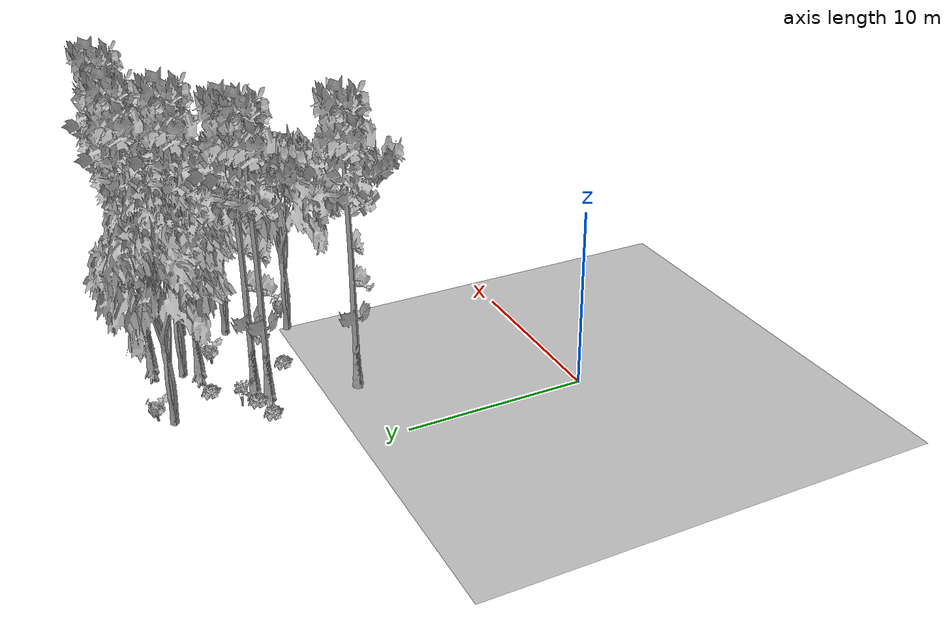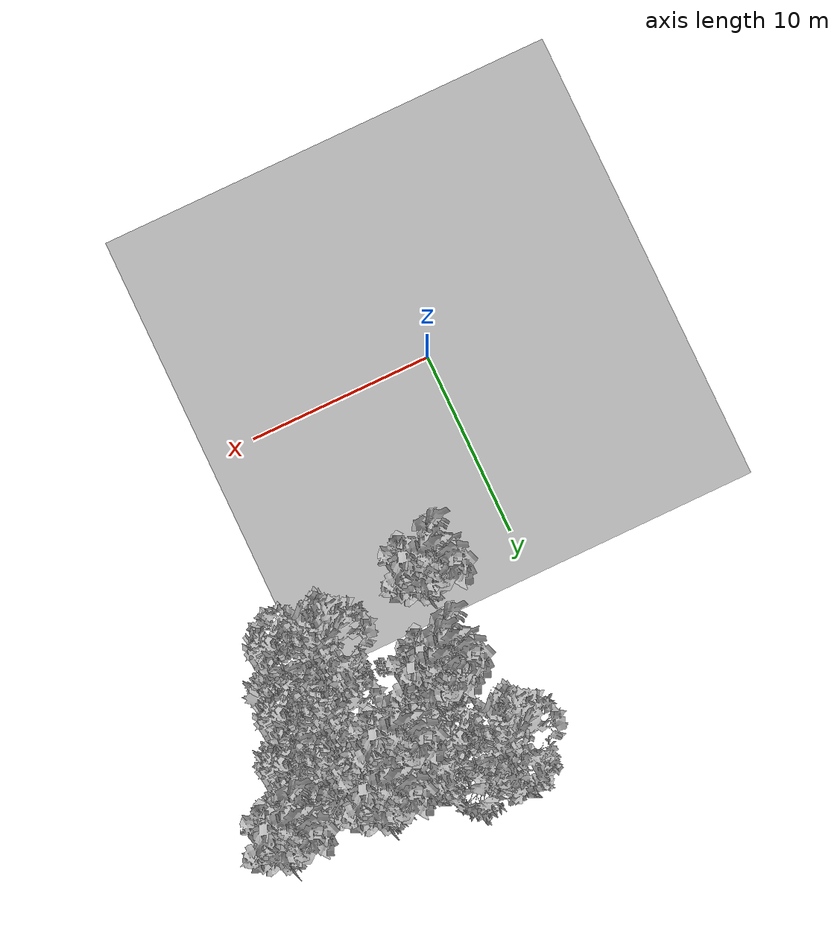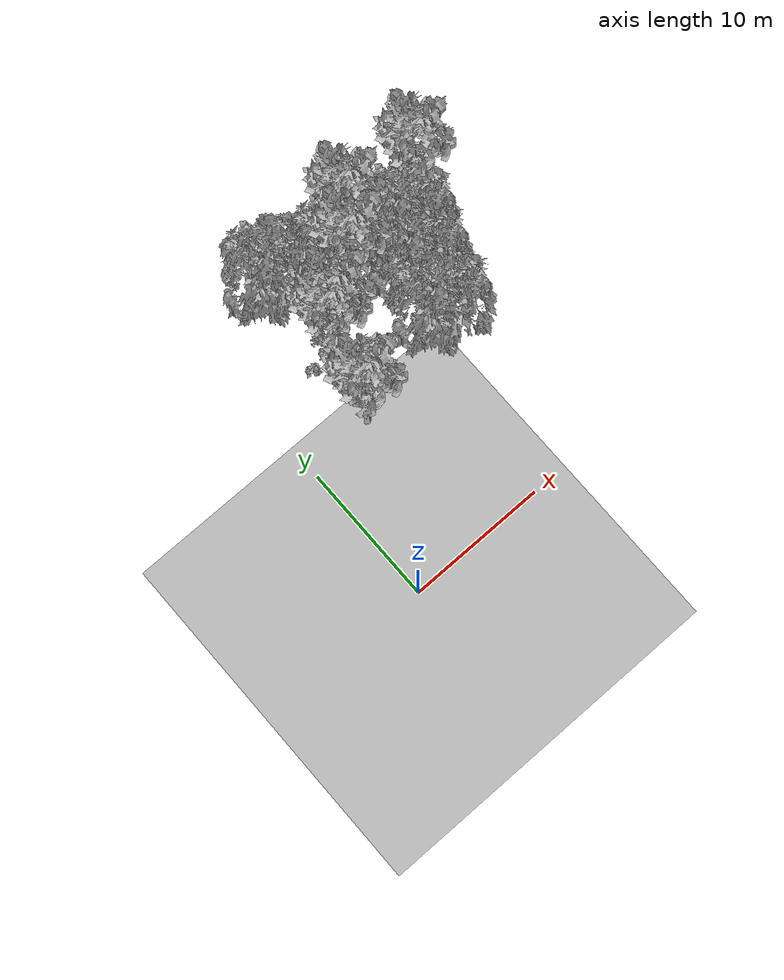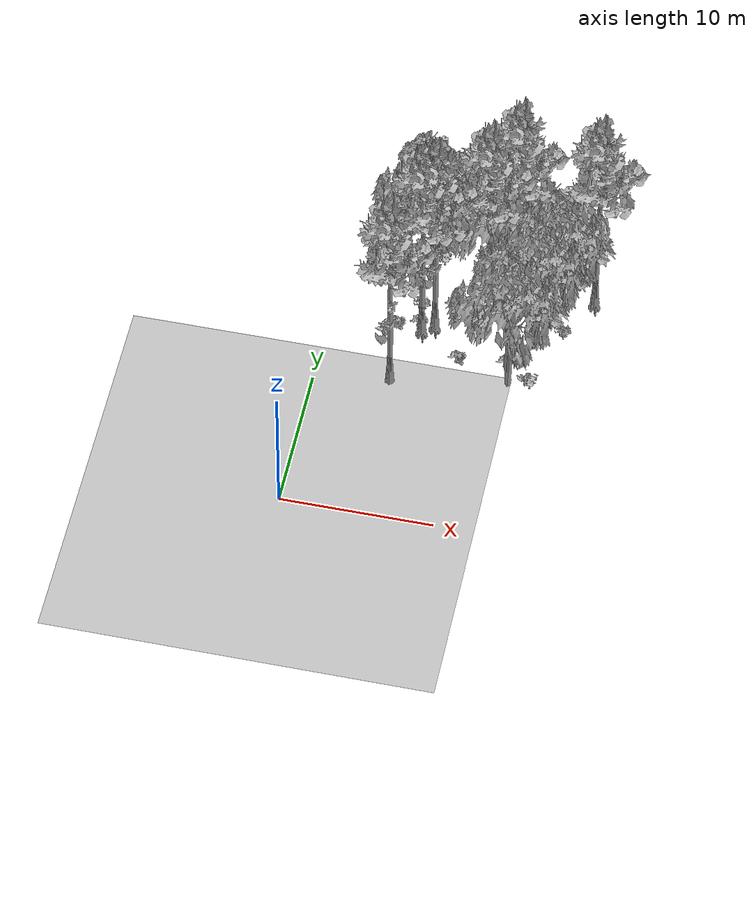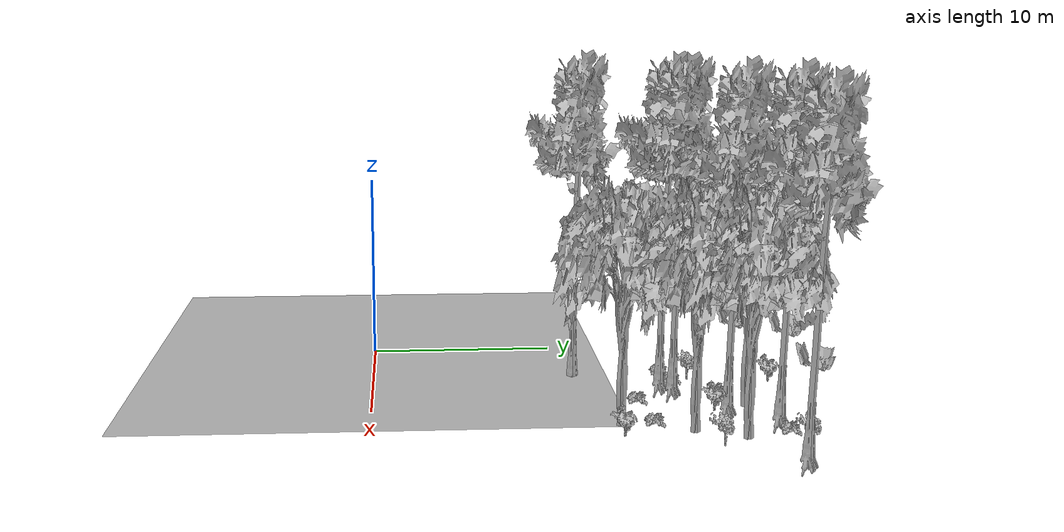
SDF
<sdf version="1.7">
 <world name="default">
  <model name="ground_plane">
   <static>1</static>
   <link name="link">
    <collision name="collision">
     <pose>-50 0 0 0 -0 0</pose>
     <geometry><plane><normal>0 0 1</normal><size>80 80</size></plane></geometry>
     <surface><contact><ode><min_depth>0.01</min_depth><max_vel>0</max_vel></ode></contact></surface>
    </collision>
    <visual name="grass">
     <cast_shadows>0</cast_shadows>
     <geometry>
      <mesh>
       <scale>0.46714285714285714 0.46714285714285714 0.1</scale>
       <uri>file://grass_plane/meshes/grass_plane.dae</uri>
      </mesh>
     </geometry>
    </visual>
   </link>
  </model>
  <model name="Tree 24">
   <static>1</static>
   <pose>13.38012592410449 15.485081361234052 0 1.57079 -0 0</pose>
   <link name="link">
    <collision name="collision">
     <geometry><mesh><scale>3.5 5 3.5</scale><uri>model://tree_2/meshes/tree_2.obj</uri></mesh></geometry>
    </collision>
    <visual name="visual">
     <geometry><mesh><scale>3.5 5 3.5</scale><uri>model://tree_2/meshes/tree_2.obj</uri></mesh></geometry>
    </visual>
   </link>
  </model>
  <model name="Tree 65">
   <static>1</static>
   <pose>4.92162815765316 10.764913708239128 0 1.57079 -0 0</pose>
   <link name="link">
    <collision name="collision">
     <geometry><mesh><scale>3.5 5 3.5</scale><uri>model://tree_9/meshes/tree_9.obj</uri></mesh></geometry>
    </collision>
    <visual name="visual">
     <geometry><mesh><scale>3.5 5 3.5</scale><uri>model://tree_9/meshes/tree_9.obj</uri></mesh></geometry>
    </visual>
   </link>
  </model>
  <model name="Tree 185">
   <static>1</static>
   <pose>5.742342974056676 20.387833841905838 0 1.57079 -0 0</pose>
   <link name="link">
    <collision name="collision">
     <geometry><mesh><scale>3.5 5 3.5</scale><uri>model://tree_2/meshes/tree_2.obj</uri></mesh></geometry>
    </collision>
    <visual name="visual">
     <geometry><mesh><scale>3.5 5 3.5</scale><uri>model://tree_2/meshes/tree_2.obj</uri></mesh></geometry>
    </visual>
   </link>
  </model>
  <model name="Tree 186">
   <static>1</static>
   <pose>14.333351921489097 17.78431121162364 0 1.57079 -0 0</pose>
   <link name="link">
    <collision name="collision">
     <geometry><mesh><scale>3.5 5 3.5</scale><uri>model://tree_2/meshes/tree_2.obj</uri></mesh></geometry>
    </collision>
    <visual name="visual">
     <geometry><mesh><scale>3.5 5 3.5</scale><uri>model://tree_2/meshes/tree_2.obj</uri></mesh></geometry>
    </visual>
   </link>
  </model>
  <model name="Tree 204">
   <static>1</static>
   <pose>12.358172221784272 12.118609055920373 0 1.57079 -0 0</pose>
   <link name="link">
    <collision name="collision">
     <geometry><mesh><scale>3.5 5 3.5</scale><uri>model://tree_2/meshes/tree_2.obj</uri></mesh></geometry>
    </collision>
    <visual name="visual">
     <geometry><mesh><scale>3.5 5 3.5</scale><uri>model://tree_2/meshes/tree_2.obj</uri></mesh></geometry>
    </visual>
   </link>
  </model>
  <model name="Tree 228">
   <static>1</static>
   <pose>16.742866368574553 19.899487163918863 0 1.57079 -0 0</pose>
   <link name="link">
    <collision name="collision">
     <geometry><mesh><scale>3.5 5 3.5</scale><uri>model://tree_9/meshes/tree_9.obj</uri></mesh></geometry>
    </collision>
    <visual name="visual">
     <geometry><mesh><scale>3.5 5 3.5</scale><uri>model://tree_9/meshes/tree_9.obj</uri></mesh></geometry>
    </visual>
   </link>
  </model>
  <model name="Tree 314">
   <static>1</static>
   <pose>6.105237785881123 15.303037741854467 0 1.57079 -0 0</pose>
   <link name="link">
    <collision name="collision">
     <geometry><mesh><scale>3.5 5 3.5</scale><uri>model://tree_9/meshes/tree_9.obj</uri></mesh></geometry>
    </collision>
    <visual name="visual">
     <geometry><mesh><scale>3.5 5 3.5</scale><uri>model://tree_9/meshes/tree_9.obj</uri></mesh></geometry>
    </visual>
   </link>
  </model>
  <model name="Tree 343">
   <static>1</static>
   <pose>10.003418617094688 18.84062264739608 0 1.57079 -0 0</pose>
   <link name="link">
    <collision name="collision">
     <geometry><mesh><scale>3.5 5 3.5</scale><uri>model://tree_2/meshes/tree_2.obj</uri></mesh></geometry>
    </collision>
    <visual name="visual">
     <geometry><mesh><scale>3.5 5 3.5</scale><uri>model://tree_2/meshes/tree_2.obj</uri></mesh></geometry>
    </visual>
   </link>
  </model>
  <model name="Tree 360">
   <static>1</static>
   <pose>11.528405096089053 20.20735470074851 0 1.57079 -0 0</pose>
   <link name="link">
    <collision name="collision">
     <geometry><mesh><scale>3.5 5 3.5</scale><uri>model://tree_9/meshes/tree_9.obj</uri></mesh></geometry>
    </collision>
    <visual name="visual">
     <geometry><mesh><scale>3.5 5 3.5</scale><uri>model://tree_9/meshes/tree_9.obj</uri></mesh></geometry>
    </visual>
   </link>
  </model>
  <model name="Tree 378">
   <static>1</static>
   <pose>6.867868641577239 15.845526687433392 0 1.57079 -0 0</pose>
   <link name="link">
    <collision name="collision">
     <geometry><mesh><scale>3.5 5 3.5</scale><uri>model://tree_9/meshes/tree_9.obj</uri></mesh></geometry>
    </collision>
    <visual name="visual">
     <geometry><mesh><scale>3.5 5 3.5</scale><uri>model://tree_9/meshes/tree_9.obj</uri></mesh></geometry>
    </visual>
   </link>
  </model>
  <model name="Tree 401">
   <static>1</static>
   <pose>9.95048836911485 17.99742113597855 0 1.57079 -0 0</pose>
   <link name="link">
    <collision name="collision">
     <geometry><mesh><scale>3.5 5 3.5</scale><uri>model://tree_9/meshes/tree_9.obj</uri></mesh></geometry>
    </collision>
    <visual name="visual">
     <geometry><mesh><scale>3.5 5 3.5</scale><uri>model://tree_9/meshes/tree_9.obj</uri></mesh></geometry>
    </visual>
   </link>
  </model>
  <model name="Bush 56">
   <static>1</static>
   <pose>13.394731145654127 20.12972115872862 0 1.57079 -0 0</pose>
   <link name="link">
    <collision name="collision">
     <geometry><mesh><scale>2 2 2</scale><uri>model://bush_2/meshes/bush_2.obj</uri></mesh></geometry>
     <surface><contact><collide_without_contact>false</collide_without_contact></contact></surface>
    </collision>
    <visual name="visual">
     <geometry><mesh><scale>2 2 2</scale><uri>model://bush_2/meshes/bush_2.obj</uri></mesh></geometry>
    </visual>
   </link>
  </model>
  <model name="Bush 171">
   <static>1</static>
   <pose>4.387192458253416 15.613715315374705 0 1.57079 -0 0</pose>
   <link name="link">
    <collision name="collision">
     <geometry><mesh><scale>2 2 2</scale><uri>model://bush_2/meshes/bush_2.obj</uri></mesh></geometry>
     <surface><contact><collide_without_contact>false</collide_without_contact></contact></surface>
    </collision>
    <visual name="visual">
     <geometry><mesh><scale>2 2 2</scale><uri>model://bush_2/meshes/bush_2.obj</uri></mesh></geometry>
    </visual>
   </link>
  </model>
  <model name="Bush 293">
   <static>1</static>
   <pose>5.880793698900689 16.8571688920362 0 1.57079 -0 0</pose>
   <link name="link">
    <collision name="collision">
     <geometry><mesh><scale>2 2 2</scale><uri>model://bush_5/meshes/bush_5.obj</uri></mesh></geometry>
     <surface><contact><collide_without_contact>false</collide_without_contact></contact></surface>
    </collision>
    <visual name="visual">
     <geometry><mesh><scale>2 2 2</scale><uri>model://bush_5/meshes/bush_5.obj</uri></mesh></geometry>
    </visual>
   </link>
  </model>
  <model name="Bush 377">
   <static>1</static>
   <pose>6.462817045984998 21.11668833014192 0 1.57079 -0 0</pose>
   <link name="link">
    <collision name="collision">
     <geometry><mesh><scale>2 2 2</scale><uri>model://bush_0/meshes/bush_0.obj</uri></mesh></geometry>
     <surface><contact><collide_without_contact>false</collide_without_contact></contact></surface>
    </collision>
    <visual name="visual">
     <geometry><mesh><scale>2 2 2</scale><uri>model://bush_0/meshes/bush_0.obj</uri></mesh></geometry>
    </visual>
   </link>
  </model>
  <model name="Bush 452">
   <static>1</static>
   <pose>8.849438700727319 13.566302256596828 0 1.57079 -0 0</pose>
   <link name="link">
    <collision name="collision">
     <geometry><mesh><scale>2 2 2</scale><uri>model://bush_2/meshes/bush_2.obj</uri></mesh></geometry>
     <surface><contact><collide_without_contact>false</collide_without_contact></contact></surface>
    </collision>
    <visual name="visual">
     <geometry><mesh><scale>2 2 2</scale><uri>model://bush_2/meshes/bush_2.obj</uri></mesh></geometry>
    </visual>
   </link>
  </model>
  <model name="Bush 458">
   <static>1</static>
   <pose>10.691377998391687 17.145459157306682 0 1.57079 -0 0</pose>
   <link name="link">
    <collision name="collision">
     <geometry><mesh><scale>2 2 2</scale><uri>model://bush_0/meshes/bush_0.obj</uri></mesh></geometry>
     <surface><contact><collide_without_contact>false</collide_without_contact></contact></surface>
    </collision>
    <visual name="visual">
     <geometry><mesh><scale>2 2 2</scale><uri>model://bush_0/meshes/bush_0.obj</uri></mesh></geometry>
    </visual>
   </link>
  </model>
  <model name="Bush 459">
   <static>1</static>
   <pose>13.86189016772802 12.077841800846343 0 1.57079 -0 0</pose>
   <link name="link">
    <collision name="collision">
     <geometry><mesh><scale>2 2 2</scale><uri>model://bush_0/meshes/bush_0.obj</uri></mesh></geometry>
     <surface><contact><collide_without_contact>false</collide_without_contact></contact></surface>
    </collision>
    <visual name="visual">
     <geometry><mesh><scale>2 2 2</scale><uri>model://bush_0/meshes/bush_0.obj</uri></mesh></geometry>
    </visual>
   </link>
  </model>
  <model name="Bush 500">
   <static>1</static>
   <pose>11.989439810503967 13.836013838808164 0 1.57079 -0 0</pose>
   <link name="link">
    <collision name="collision">
     <geometry><mesh><scale>2 2 2</scale><uri>model://bush_2/meshes/bush_2.obj</uri></mesh></geometry>
     <surface><contact><collide_without_contact>false</collide_without_contact></contact></surface>
    </collision>
    <visual name="visual">
     <geometry><mesh><scale>2 2 2</scale><uri>model://bush_2/meshes/bush_2.obj</uri></mesh></geometry>
    </visual>
   </link>
  </model>
  <model name="Bush 521">
   <static>1</static>
   <pose>15.2878631590469 16.49114763099996 0 1.57079 -0 0</pose>
   <link name="link">
    <collision name="collision">
     <geometry><mesh><scale>2 2 2</scale><uri>model://bush_5/meshes/bush_5.obj</uri></mesh></geometry>
     <surface><contact><collide_without_contact>false</collide_without_contact></contact></surface>
    </collision>
    <visual name="visual">
     <geometry><mesh><scale>2 2 2</scale><uri>model://bush_5/meshes/bush_5.obj</uri></mesh></geometry>
    </visual>
   </link>
  </model>
  <model name="Bush 551">
   <static>1</static>
   <pose>5.817135921981681 15.981422810624544 0 1.57079 -0 0</pose>
   <link name="link">
    <collision name="collision">
     <geometry><mesh><scale>2 2 2</scale><uri>model://bush_2/meshes/bush_2.obj</uri></mesh></geometry>
     <surface><contact><collide_without_contact>false</collide_without_contact></contact></surface>
    </collision>
    <visual name="visual">
     <geometry><mesh><scale>2 2 2</scale><uri>model://bush_2/meshes/bush_2.obj</uri></mesh></geometry>
    </visual>
   </link>
  </model>
  <model name="Bush 616">
   <static>1</static>
   <pose>7.746667324238636 17.954131203670094 0 1.57079 -0 0</pose>
   <link name="link">
    <collision name="collision">
     <geometry><mesh><scale>2 2 2</scale><uri>model://bush_2/meshes/bush_2.obj</uri></mesh></geometry>
     <surface><contact><collide_without_contact>false</collide_without_contact></contact></surface>
    </collision>
    <visual name="visual">
     <geometry><mesh><scale>2 2 2</scale><uri>model://bush_2/meshes/bush_2.obj</uri></mesh></geometry>
    </visual>
   </link>
  </model>
  <model name="Bush 619">
   <static>1</static>
   <pose>15.493268223004506 20.48116388175852 0 1.57079 -0 0</pose>
   <link name="link">
    <collision name="collision">
     <geometry><mesh><scale>2 2 2</scale><uri>model://bush_5/meshes/bush_5.obj</uri></mesh></geometry>
     <surface><contact><collide_without_contact>false</collide_without_contact></contact></surface>
    </collision>
    <visual name="visual">
     <geometry><mesh><scale>2 2 2</scale><uri>model://bush_5/meshes/bush_5.obj</uri></mesh></geometry>
    </visual>
   </link>
  </model>
 </world>
</sdf>
